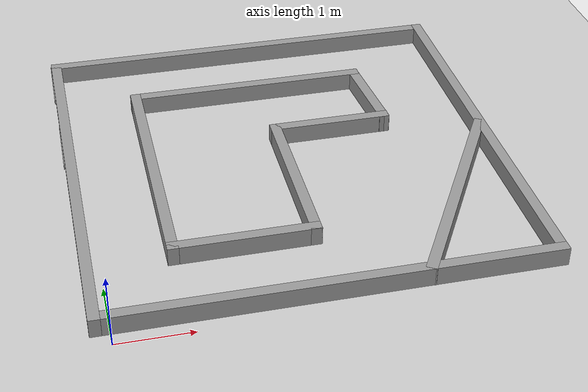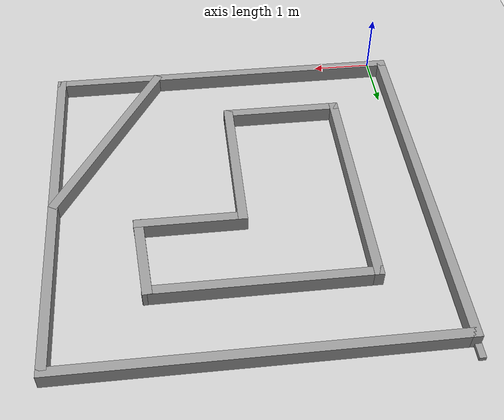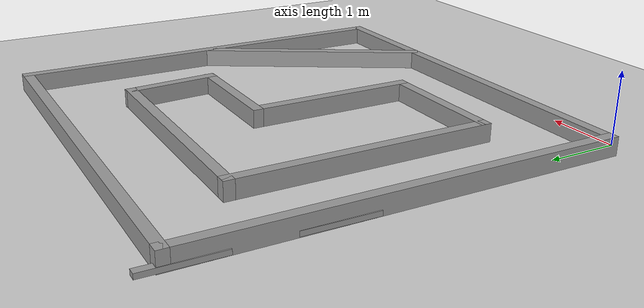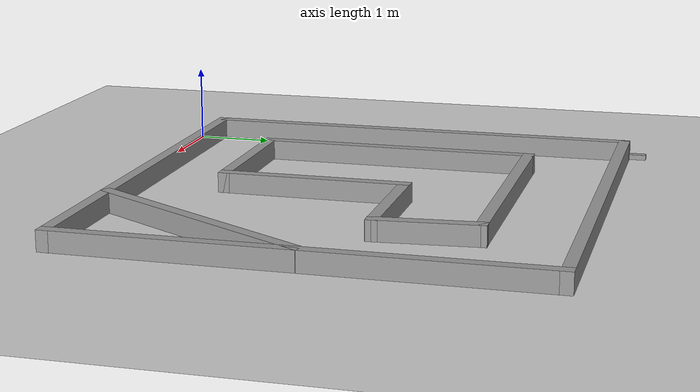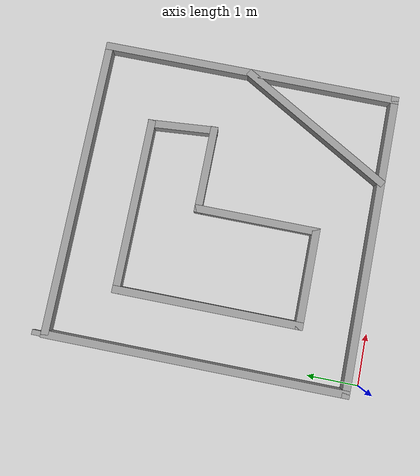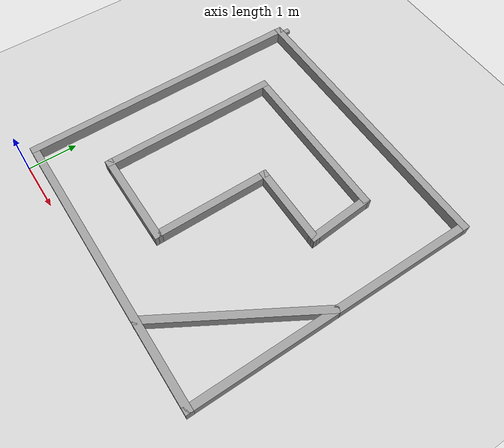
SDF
<sdf version="1.6">
 <world name="default">
  <plugin filename="gz-sim-physics-system" name="gz::sim::systems::Physics"/>
  <plugin filename="gz-sim-user-commands-system" name="gz::sim::systems::UserCommands"/>
  <plugin filename="gz-sim-scene-broadcaster-system" name="gz::sim::systems::SceneBroadcaster"/>
  <plugin filename="gz-sim-sensors-system" name="gz::sim::systems::Sensors">
   <render_engine>ogre2</render_engine>
  </plugin>
  <plugin filename="gz-sim-imu-system" name="gz::sim::systems::Imu"/>
  <light name="sun" type="directional">
   <pose>0 0 10 0 -0 0</pose>
   <diffuse>0.8 0.8 0.8 1</diffuse>
   <specular>0.2 0.2 0.2 1</specular>
   <attenuation>
    <range>1000</range>
    <constant>0.9</constant>
    <linear>0.01</linear>
    <quadratic>0.001</quadratic>
   </attenuation>
   <direction>-0.1 0.1 -0.9</direction>
  </light>
  <model name="ground_plane">
   <static>1</static>
   <link name="link">
    <collision name="collision">
     <geometry><plane><normal>0 0 1</normal><size>100 100</size></plane></geometry>
     <surface>
      <contact><collide_bitmask>65535</collide_bitmask></contact>
      <friction><ode><mu>100</mu><mu2>50</mu2></ode></friction>
     </surface>
     <max_contacts>12</max_contacts>
    </collision>
    <visual name="visual">
     <cast_shadows>0</cast_shadows>
     <geometry><plane><normal>0 0 1</normal><size>100 100</size></plane></geometry>
     <material>
      <script><uri>file://media/materials/scripts/gazebo.material</uri><name>Gazebo/Grey</name></script>
     </material>
    </visual>
   </link>
  </model>
  <model name="unit_box">
   <static>1</static>
   <pose>-0.212678 4.16 0.039013 -0 -0 -1.58061</pose>
   <link name="link">
    <inertial>
     <mass>1</mass>
     <inertia>
      <ixx>0.166667</ixx>
      <ixy>0</ixy>
      <ixz>0</ixz>
      <iyy>0.166667</iyy>
      <iyz>0</iyz>
      <izz>0.166667</izz>
     </inertia>
    </inertial>
    <collision name="collision"><geometry><box><size>1 0.100821 0.067826</size></box></geometry></collision>
    <visual name="visual">
     <geometry><box><size>1 0.100821 0.067826</size></box></geometry>
     <material>
      <script><name>Gazebo/Grey</name><uri>file://media/materials/scripts/gazebo.material</uri></script>
     </material>
    </visual>
   </link>
  </model>
  <model name="unit_box_clone">
   <static>1</static>
   <pose>-0.212678 5.91024 0.039013 -0 -0 -1.58061</pose>
   <link name="link">
    <inertial>
     <mass>1</mass>
     <inertia>
      <ixx>0.166667</ixx>
      <ixy>0</ixy>
      <ixz>0</ixz>
      <iyy>0.166667</iyy>
      <iyz>0</iyz>
      <izz>0.166667</izz>
     </inertia>
    </inertial>
    <collision name="collision"><geometry><box><size>1 0.100821 0.067826</size></box></geometry></collision>
    <visual name="visual">
     <geometry><box><size>1 0.100821 0.067826</size></box></geometry>
     <material>
      <script><name>Gazebo/Grey</name><uri>file://media/materials/scripts/gazebo.material</uri></script>
     </material>
    </visual>
   </link>
  </model>
  <model name="maze_walls">
   <pose>2.25275 3.18267 0 0 -0 1.5708</pose>
   <scale>1 1 0.1</scale>
   <link name="Wall_0">
    <collision name="Wall_0_Collision">
     <geometry><box><size>6 0.15 0.5</size></box></geometry>
     <pose>0 0 1.25 0 -0 0</pose>
    </collision>
    <visual name="Wall_0_Visual">
     <geometry><box><size>6 0.15 0.5</size></box></geometry>
     <material>
      <script><uri>file://media/materials/scripts/gazebo.material</uri><name>Gazebo/Grey</name></script>
     </material>
    </visual>
    <pose>2.92873 -0.496274 0 0 -0 1.5708</pose>
   </link>
   <link name="Wall_1">
    <collision name="Wall_1_Collision"><geometry><box><size>6 0.15 0.5</size></box></geometry></collision>
    <visual name="Wall_1_Visual">
     <geometry><box><size>6 0.15 0.5</size></box></geometry>
     <material>
      <script><uri>file://media/materials/scripts/gazebo.material</uri><name>Gazebo/Grey</name></script>
     </material>
    </visual>
    <pose>0.003726 2.42873 0 0 -0 3.14159</pose>
   </link>
   <link name="Wall_11">
    <collision name="Wall_11_Collision"><geometry><box><size>2.5 0.15 0.5</size></box></geometry></collision>
    <visual name="Wall_11_Visual">
     <geometry><box><size>2.5 0.15 0.5</size></box></geometry>
     <material>
      <script><uri>file://media/materials/scripts/gazebo.material</uri><name>Gazebo/Grey</name></script>
     </material>
    </visual>
    <pose>-0.656274 -0.511274 0 0 -0 0</pose>
   </link>
   <link name="Wall_12">
    <collision name="Wall_12_Collision"><geometry><box><size>1.75 0.15 0.5</size></box></geometry></collision>
    <visual name="Wall_12_Visual">
     <geometry><box><size>1.75 0.15 0.5</size></box></geometry>
     <material>
      <script><uri>file://media/materials/scripts/gazebo.material</uri><name>Gazebo/Grey</name></script>
     </material>
    </visual>
    <pose>0.518726 -1.31127 0 0 -0 -1.5708</pose>
   </link>
   <link name="Wall_13">
    <collision name="Wall_13_Collision"><geometry><box><size>1.40399 0.15 0.5</size></box></geometry></collision>
    <visual name="Wall_13_Visual">
     <geometry><box><size>1.40399 0.15 0.5</size></box></geometry>
     <material>
      <script><uri>file://media/materials/scripts/gazebo.material</uri><name>Gazebo/Grey</name></script>
     </material>
    </visual>
    <pose>1.14373 -2.06127 0 0 -0 0.07983</pose>
   </link>
   <link name="Wall_15">
    <collision name="Wall_15_Collision"><geometry><box><size>3.5 0.15 0.5</size></box></geometry></collision>
    <visual name="Wall_15_Visual">
     <geometry><box><size>3.5 0.15 0.5</size></box></geometry>
     <material>
      <script><uri>file://media/materials/scripts/gazebo.material</uri><name>Gazebo/Grey</name></script>
     </material>
    </visual>
    <pose>-1.45068 -2.55877 0 0 -0 -0.523599</pose>
   </link>
   <link name="Wall_3">
    <collision name="Wall_3_Collision"><geometry><box><size>3.5 0.15 0.5</size></box></geometry></collision>
    <visual name="Wall_3_Visual">
     <geometry><box><size>3.5 0.15 0.5</size></box></geometry>
     <material>
      <script><uri>file://media/materials/scripts/gazebo.material</uri><name>Gazebo/Grey</name></script>
     </material>
    </visual>
    <pose>1.76873 -0.336274 0 0 -0 1.5708</pose>
   </link>
   <link name="Wall_4">
    <collision name="Wall_4_Collision"><geometry><box><size>3.75 0.15 0.5</size></box></geometry></collision>
    <visual name="Wall_4_Visual">
     <geometry><box><size>3.75 0.15 0.5</size></box></geometry>
     <material>
      <script><uri>file://media/materials/scripts/gazebo.material</uri><name>Gazebo/Grey</name></script>
     </material>
    </visual>
    <pose>-0.031274 1.33873 0 0 -0 3.14159</pose>
   </link>
   <link name="Wall_6">
    <collision name="Wall_6_Collision"><geometry><box><size>6 0.15 0.5</size></box></geometry></collision>
    <visual name="Wall_6_Visual">
     <geometry><box><size>6 0.15 0.5</size></box></geometry>
     <material>
      <script><uri>file://media/materials/scripts/gazebo.material</uri><name>Gazebo/Grey</name></script>
     </material>
    </visual>
    <pose>-2.92127 -0.496274 0 0 -0 -1.5708</pose>
   </link>
   <link name="Wall_7">
    <collision name="Wall_7_Collision"><geometry><box><size>6 0.15 0.5</size></box></geometry></collision>
    <visual name="Wall_7_Visual">
     <geometry><box><size>6 0.15 0.5</size></box></geometry>
     <material>
      <script><uri>file://media/materials/scripts/gazebo.material</uri><name>Gazebo/Grey</name></script>
     </material>
    </visual>
    <pose>0.003726 -3.42127 0 0 -0 0</pose>
   </link>
   <link name="Wall_9">
    <collision name="Wall_9_Collision"><geometry><box><size>2 0.15 0.5</size></box></geometry></collision>
    <visual name="Wall_9_Visual">
     <geometry><box><size>2 0.15 0.5</size></box></geometry>
     <material>
      <script><uri>file://media/materials/scripts/gazebo.material</uri><name>Gazebo/Grey</name></script>
     </material>
    </visual>
    <pose>-1.83127 0.413726 0 0 -0 -1.5708</pose>
   </link>
   <static>1</static>
  </model>
  <gravity>0 0 -9.81</gravity>
  <magnetic_field>6e-06 2.3e-05 -4.2e-05</magnetic_field>
  <atmosphere type="adiabatic"/>
  <physics name="default_physics" default="0" type="ode">
   <max_step_size>0.001</max_step_size>
   <real_time_factor>1</real_time_factor>
   <real_time_update_rate>1000</real_time_update_rate>
  </physics>
  <scene><ambient>0.99 0.99 0.85 1</ambient><background>0.7 0.7 0.7 1</background><shadows>1</shadows></scene>
  <spherical_coordinates>
   <surface_model>EARTH_WGS84</surface_model>
   <latitude_deg>0</latitude_deg>
   <longitude_deg>0</longitude_deg>
   <elevation>0</elevation>
   <heading_deg>0</heading_deg>
  </spherical_coordinates>
 </world>
</sdf>
